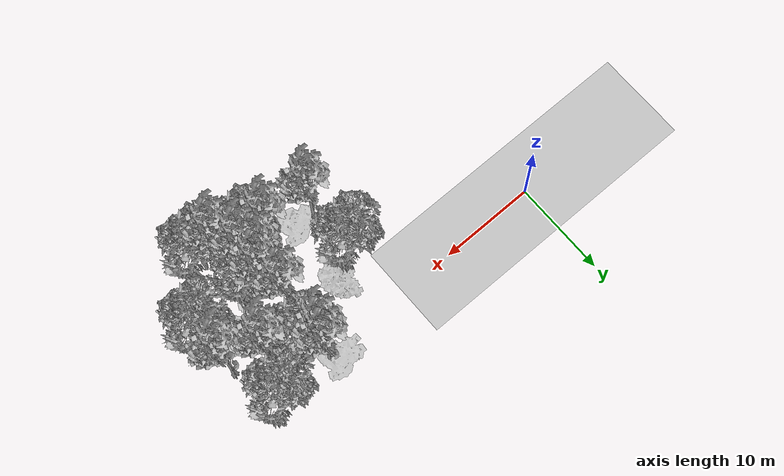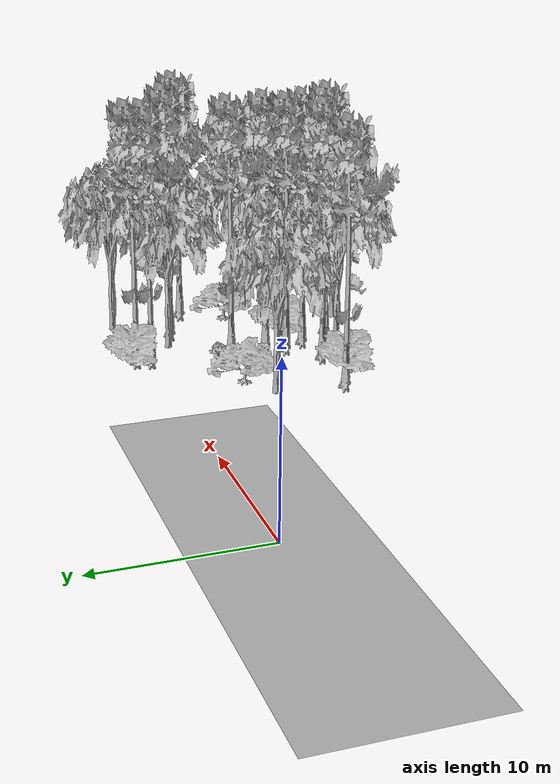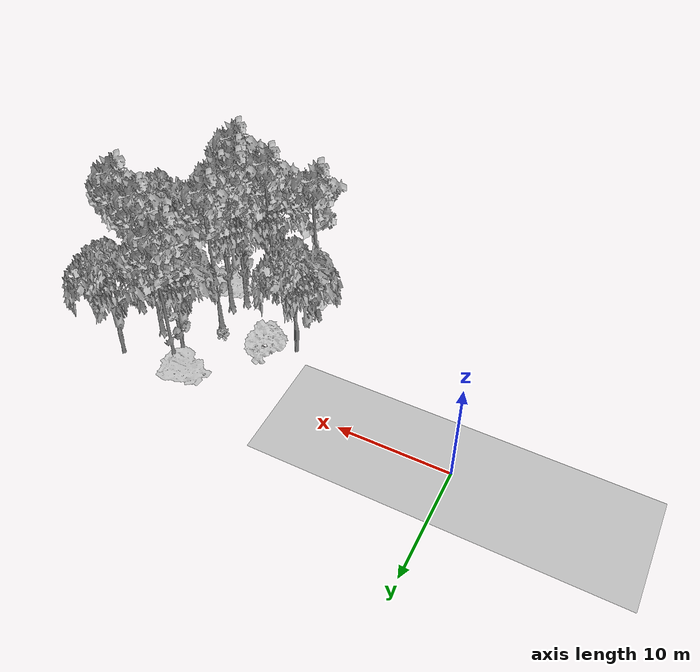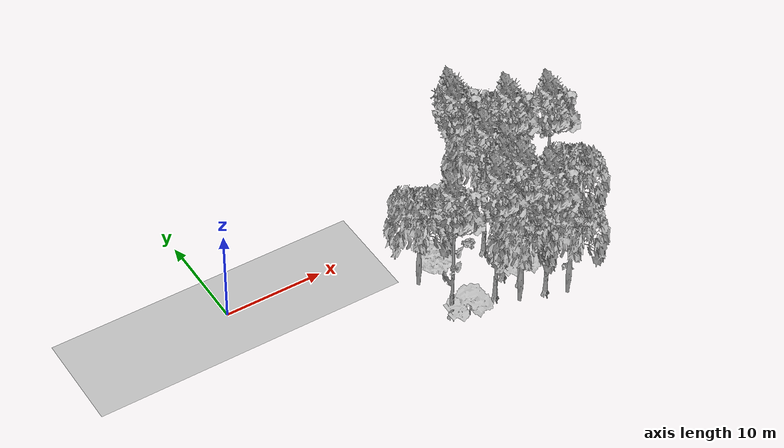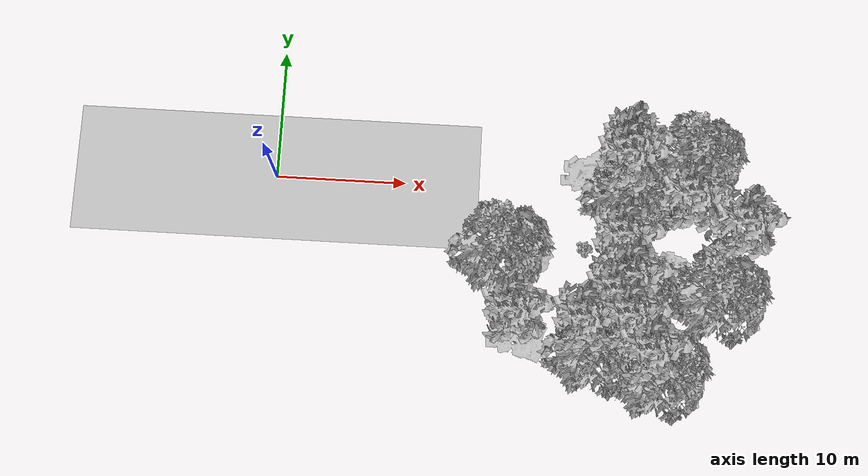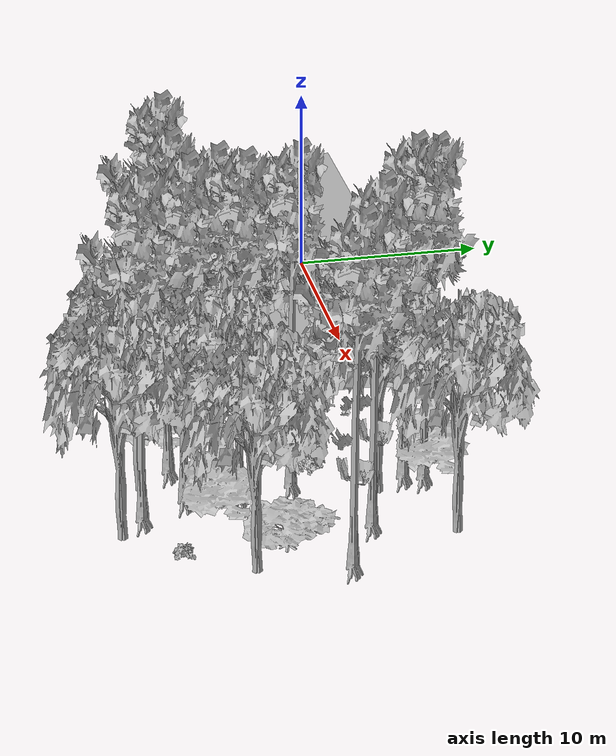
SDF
<sdf version="1.7">
 <world name="default">
  <model name="ground_plane">
   <static>1</static>
   <link name="link">
    <collision name="collision">
     <pose>-50 0 0 0 -0 0</pose>
     <geometry><plane><normal>0 0 1</normal><size>100 100</size></plane></geometry>
     <surface><contact><ode><min_depth>0.01</min_depth><max_vel>0</max_vel></ode></contact></surface>
    </collision>
    <visual name="grass">
     <cast_shadows>0</cast_shadows>
     <geometry>
      <mesh>
       <scale>0.5814285714285714 0.18142857142857144 0.1</scale>
       <uri>file://grass_plane/meshes/grass_plane.dae</uri>
      </mesh>
     </geometry>
    </visual>
   </link>
  </model>
  <model name="Tree 14">
   <static>1</static>
   <pose>32.87773157548624 -4.341717921988613 0 1.57079 -0 0</pose>
   <link name="link">
    <collision name="collision">
     <geometry><mesh><scale>3.5 5 3.5</scale><uri>model://tree_9/meshes/tree_9.obj</uri></mesh></geometry>
    </collision>
    <visual name="visual">
     <geometry><mesh><scale>3.5 5 3.5</scale><uri>model://tree_9/meshes/tree_9.obj</uri></mesh></geometry>
    </visual>
   </link>
  </model>
  <model name="Tree 28">
   <static>1</static>
   <pose>25.027270204580333 -0.147504677809847 0 1.57079 -0 0</pose>
   <link name="link">
    <collision name="collision">
     <geometry><mesh><scale>3.5 5 3.5</scale><uri>model://tree_9/meshes/tree_9.obj</uri></mesh></geometry>
    </collision>
    <visual name="visual">
     <geometry><mesh><scale>3.5 5 3.5</scale><uri>model://tree_9/meshes/tree_9.obj</uri></mesh></geometry>
    </visual>
   </link>
  </model>
  <model name="Tree 39">
   <static>1</static>
   <pose>23.95326904491769 -12.777055926754368 0 1.57079 -0 0</pose>
   <link name="link">
    <collision name="collision">
     <geometry><mesh><scale>3.5 5 3.5</scale><uri>model://tree_2/meshes/tree_2.obj</uri></mesh></geometry>
    </collision>
    <visual name="visual">
     <geometry><mesh><scale>3.5 5 3.5</scale><uri>model://tree_2/meshes/tree_2.obj</uri></mesh></geometry>
    </visual>
   </link>
  </model>
  <model name="Tree 42">
   <static>1</static>
   <pose>32.49662305864281 -8.730842978058655 0 1.57079 -0 0</pose>
   <link name="link">
    <collision name="collision">
     <geometry><mesh><scale>3.5 5 3.5</scale><uri>model://tree_2/meshes/tree_2.obj</uri></mesh></geometry>
    </collision>
    <visual name="visual">
     <geometry><mesh><scale>3.5 5 3.5</scale><uri>model://tree_2/meshes/tree_2.obj</uri></mesh></geometry>
    </visual>
   </link>
  </model>
  <model name="Tree 49">
   <static>1</static>
   <pose>24.865050706950868 -5.6117979679163685 0 1.57079 -0 0</pose>
   <link name="link">
    <collision name="collision">
     <geometry><mesh><scale>3.5 5 3.5</scale><uri>model://tree_9/meshes/tree_9.obj</uri></mesh></geometry>
    </collision>
    <visual name="visual">
     <geometry><mesh><scale>3.5 5 3.5</scale><uri>model://tree_9/meshes/tree_9.obj</uri></mesh></geometry>
    </visual>
   </link>
  </model>
  <model name="Tree 71">
   <static>1</static>
   <pose>17.674422019446382 -10.861829890238093 0 1.57079 -0 0</pose>
   <link name="link">
    <collision name="collision">
     <geometry><mesh><scale>3.5 5 3.5</scale><uri>model://tree_9/meshes/tree_9.obj</uri></mesh></geometry>
    </collision>
    <visual name="visual">
     <geometry><mesh><scale>3.5 5 3.5</scale><uri>model://tree_9/meshes/tree_9.obj</uri></mesh></geometry>
    </visual>
   </link>
  </model>
  <model name="Tree 80">
   <static>1</static>
   <pose>26.556258266907534 -9.774614264039716 0 1.57079 -0 0</pose>
   <link name="link">
    <collision name="collision">
     <geometry><mesh><scale>3 2 3</scale><uri>model://tree_3/meshes/tree_3.obj</uri></mesh></geometry>
    </collision>
    <visual name="visual">
     <geometry><mesh><scale>3 2 3</scale><uri>model://tree_3/meshes/tree_3.obj</uri></mesh></geometry>
    </visual>
   </link>
  </model>
  <model name="Tree 107">
   <static>1</static>
   <pose>24.246087857603783 0.9787055510176224 0 1.57079 -0 0</pose>
   <link name="link">
    <collision name="collision">
     <geometry><mesh><scale>3 2 3</scale><uri>model://tree_3/meshes/tree_3.obj</uri></mesh></geometry>
    </collision>
    <visual name="visual">
     <geometry><mesh><scale>3 2 3</scale><uri>model://tree_3/meshes/tree_3.obj</uri></mesh></geometry>
    </visual>
   </link>
  </model>
  <model name="Tree 128">
   <static>1</static>
   <pose>22.37063480193183 -11.120499001583678 0 1.57079 -0 0</pose>
   <link name="link">
    <collision name="collision">
     <geometry><mesh><scale>3.5 5 3.5</scale><uri>model://tree_9/meshes/tree_9.obj</uri></mesh></geometry>
    </collision>
    <visual name="visual">
     <geometry><mesh><scale>3.5 5 3.5</scale><uri>model://tree_9/meshes/tree_9.obj</uri></mesh></geometry>
    </visual>
   </link>
  </model>
  <model name="Tree 146">
   <static>1</static>
   <pose>17.117140619011167 -6.048218900539782 0 1.57079 -0 0</pose>
   <link name="link">
    <collision name="collision">
     <geometry><mesh><scale>3.5 5 3.5</scale><uri>model://tree_2/meshes/tree_2.obj</uri></mesh></geometry>
    </collision>
    <visual name="visual">
     <geometry><mesh><scale>3.5 5 3.5</scale><uri>model://tree_2/meshes/tree_2.obj</uri></mesh></geometry>
    </visual>
   </link>
  </model>
  <model name="Tree 151">
   <static>1</static>
   <pose>19.054907023492717 -11.78554913354094 0 1.57079 -0 0</pose>
   <link name="link">
    <collision name="collision">
     <geometry><mesh><scale>3 2 3</scale><uri>model://tree_3/meshes/tree_3.obj</uri></mesh></geometry>
    </collision>
    <visual name="visual">
     <geometry><mesh><scale>3 2 3</scale><uri>model://tree_3/meshes/tree_3.obj</uri></mesh></geometry>
    </visual>
   </link>
  </model>
  <model name="Tree 154">
   <static>1</static>
   <pose>29.359267086064023 -2.6620344609166793 0 1.57079 -0 0</pose>
   <link name="link">
    <collision name="collision">
     <geometry><mesh><scale>3.5 5 3.5</scale><uri>model://tree_9/meshes/tree_9.obj</uri></mesh></geometry>
    </collision>
    <visual name="visual">
     <geometry><mesh><scale>3.5 5 3.5</scale><uri>model://tree_9/meshes/tree_9.obj</uri></mesh></geometry>
    </visual>
   </link>
  </model>
  <model name="Tree 155">
   <static>1</static>
   <pose>26.353156174382804 -1.729154477600117 0 1.57079 -0 0</pose>
   <link name="link">
    <collision name="collision">
     <geometry><mesh><scale>3.5 5 3.5</scale><uri>model://tree_2/meshes/tree_2.obj</uri></mesh></geometry>
    </collision>
    <visual name="visual">
     <geometry><mesh><scale>3.5 5 3.5</scale><uri>model://tree_2/meshes/tree_2.obj</uri></mesh></geometry>
    </visual>
   </link>
  </model>
  <model name="Tree 158">
   <static>1</static>
   <pose>25.40056357658456 -8.204887034432382 0 1.57079 -0 0</pose>
   <link name="link">
    <collision name="collision">
     <geometry><mesh><scale>3.5 5 3.5</scale><uri>model://tree_9/meshes/tree_9.obj</uri></mesh></geometry>
    </collision>
    <visual name="visual">
     <geometry><mesh><scale>3.5 5 3.5</scale><uri>model://tree_9/meshes/tree_9.obj</uri></mesh></geometry>
    </visual>
   </link>
  </model>
  <model name="Tree 175">
   <static>1</static>
   <pose>19.495018082553656 -4.754292534824444 0 1.57079 -0 0</pose>
   <link name="link">
    <collision name="collision">
     <geometry><mesh><scale>4 2.5 4</scale><uri>model://tree_1/meshes/tree_1.obj</uri></mesh></geometry>
    </collision>
    <visual name="visual">
     <geometry><mesh><scale>4 2.5 4</scale><uri>model://tree_1/meshes/tree_1.obj</uri></mesh></geometry>
    </visual>
   </link>
  </model>
  <model name="Tree 179">
   <static>1</static>
   <pose>25.36375133223075 -10.836152098014669 0 1.57079 -0 0</pose>
   <link name="link">
    <collision name="collision">
     <geometry><mesh><scale>3.5 5 3.5</scale><uri>model://tree_9/meshes/tree_9.obj</uri></mesh></geometry>
    </collision>
    <visual name="visual">
     <geometry><mesh><scale>3.5 5 3.5</scale><uri>model://tree_9/meshes/tree_9.obj</uri></mesh></geometry>
    </visual>
   </link>
  </model>
  <model name="Tree 193">
   <static>1</static>
   <pose>24.490204448100528 -9.352833264843998 0 1.57079 -0 0</pose>
   <link name="link">
    <collision name="collision">
     <geometry><mesh><scale>3.5 5 3.5</scale><uri>model://tree_9/meshes/tree_9.obj</uri></mesh></geometry>
    </collision>
    <visual name="visual">
     <geometry><mesh><scale>3.5 5 3.5</scale><uri>model://tree_9/meshes/tree_9.obj</uri></mesh></geometry>
    </visual>
   </link>
  </model>
  <model name="Tree 199">
   <static>1</static>
   <pose>30.581614643805167 -6.897378498171564 0 1.57079 -0 0</pose>
   <link name="link">
    <collision name="collision">
     <geometry><mesh><scale>4 2.5 4</scale><uri>model://tree_1/meshes/tree_1.obj</uri></mesh></geometry>
    </collision>
    <visual name="visual">
     <geometry><mesh><scale>4 2.5 4</scale><uri>model://tree_1/meshes/tree_1.obj</uri></mesh></geometry>
    </visual>
   </link>
  </model>
  <model name="Tree 247">
   <static>1</static>
   <pose>26.75556510049792 -13.04872568689929 0 1.57079 -0 0</pose>
   <link name="link">
    <collision name="collision">
     <geometry><mesh><scale>3.5 5 3.5</scale><uri>model://tree_9/meshes/tree_9.obj</uri></mesh></geometry>
    </collision>
    <visual name="visual">
     <geometry><mesh><scale>3.5 5 3.5</scale><uri>model://tree_9/meshes/tree_9.obj</uri></mesh></geometry>
    </visual>
   </link>
  </model>
  <model name="Tree 252">
   <static>1</static>
   <pose>26.1252982129254 -9.502412014422411 0 1.57079 -0 0</pose>
   <link name="link">
    <collision name="collision">
     <geometry><mesh><scale>3.5 5 3.5</scale><uri>model://tree_2/meshes/tree_2.obj</uri></mesh></geometry>
    </collision>
    <visual name="visual">
     <geometry><mesh><scale>3.5 5 3.5</scale><uri>model://tree_2/meshes/tree_2.obj</uri></mesh></geometry>
    </visual>
   </link>
  </model>
  <model name="Tree 289">
   <static>1</static>
   <pose>25.333100334172386 0.7802991394192595 0 1.57079 -0 0</pose>
   <link name="link">
    <collision name="collision">
     <geometry><mesh><scale>3.5 5 3.5</scale><uri>model://tree_9/meshes/tree_9.obj</uri></mesh></geometry>
    </collision>
    <visual name="visual">
     <geometry><mesh><scale>3.5 5 3.5</scale><uri>model://tree_9/meshes/tree_9.obj</uri></mesh></geometry>
    </visual>
   </link>
  </model>
  <model name="Tree 293">
   <static>1</static>
   <pose>30.745779115304742 1.042323967884883 0 1.57079 -0 0</pose>
   <link name="link">
    <collision name="collision">
     <geometry><mesh><scale>3.5 5 3.5</scale><uri>model://tree_2/meshes/tree_2.obj</uri></mesh></geometry>
    </collision>
    <visual name="visual">
     <geometry><mesh><scale>3.5 5 3.5</scale><uri>model://tree_2/meshes/tree_2.obj</uri></mesh></geometry>
    </visual>
   </link>
  </model>
  <model name="Tree 295">
   <static>1</static>
   <pose>28.37577397483875 -14.254361063202195 0 1.57079 -0 0</pose>
   <link name="link">
    <collision name="collision">
     <geometry><mesh><scale>3.5 5 3.5</scale><uri>model://tree_2/meshes/tree_2.obj</uri></mesh></geometry>
    </collision>
    <visual name="visual">
     <geometry><mesh><scale>3.5 5 3.5</scale><uri>model://tree_2/meshes/tree_2.obj</uri></mesh></geometry>
    </visual>
   </link>
  </model>
  <model name="Bush 0">
   <static>1</static>
   <pose>24.014715967245294 -4.433946792725848 0 1.57079 -0 0</pose>
   <link name="link">
    <collision name="collision">
     <geometry><mesh><scale>2 2 2</scale><uri>model://bush_3/meshes/bush_3.obj</uri></mesh></geometry>
     <surface><contact><collide_without_contact>false</collide_without_contact></contact></surface>
    </collision>
    <visual name="visual">
     <geometry><mesh><scale>2 2 2</scale><uri>model://bush_3/meshes/bush_3.obj</uri></mesh></geometry>
    </visual>
   </link>
  </model>
  <model name="Bush 2">
   <static>1</static>
   <pose>30.29836458872829 -11.699814592569082 0 1.57079 -0 0</pose>
   <link name="link">
    <collision name="collision">
     <geometry><mesh><scale>2 2 2</scale><uri>model://bush_2/meshes/bush_2.obj</uri></mesh></geometry>
     <surface><contact><collide_without_contact>false</collide_without_contact></contact></surface>
    </collision>
    <visual name="visual">
     <geometry><mesh><scale>2 2 2</scale><uri>model://bush_2/meshes/bush_2.obj</uri></mesh></geometry>
    </visual>
   </link>
  </model>
 </world>
</sdf>
